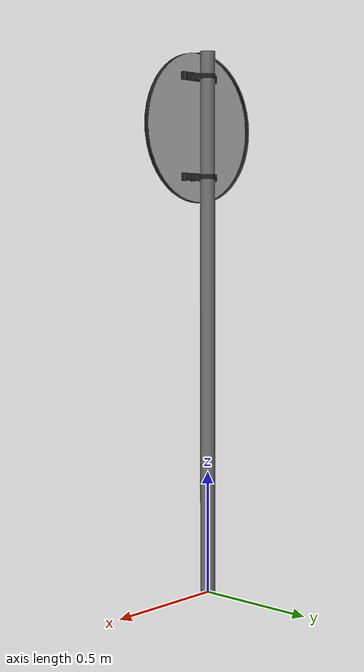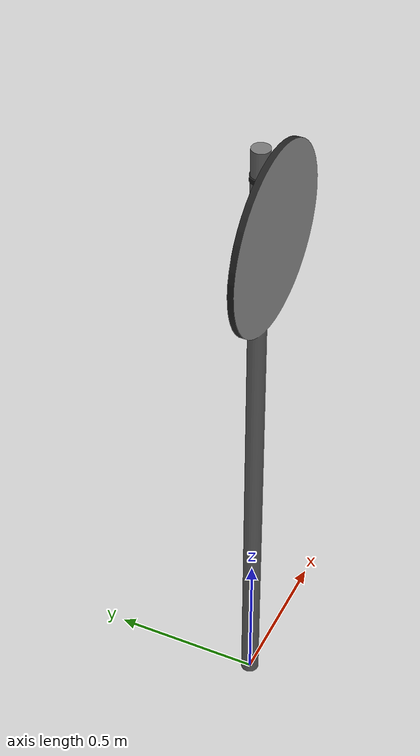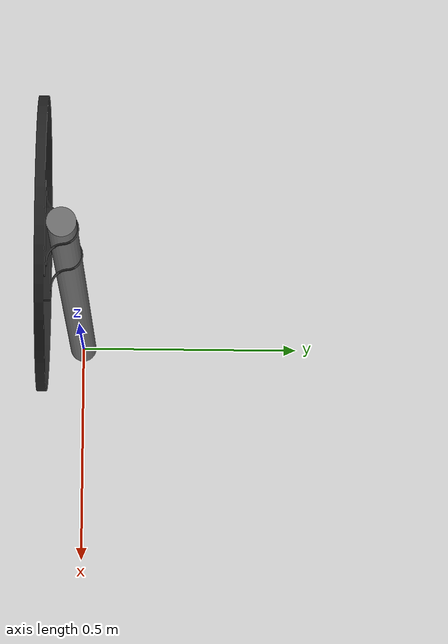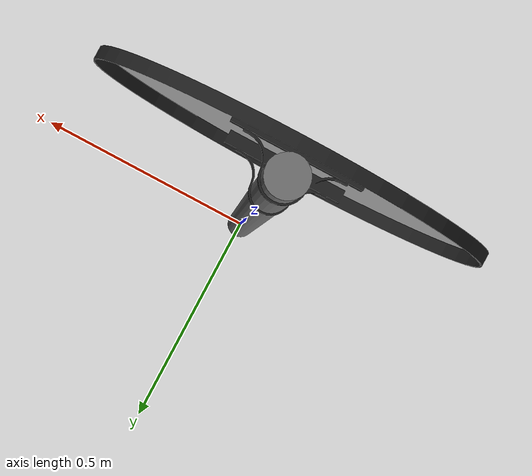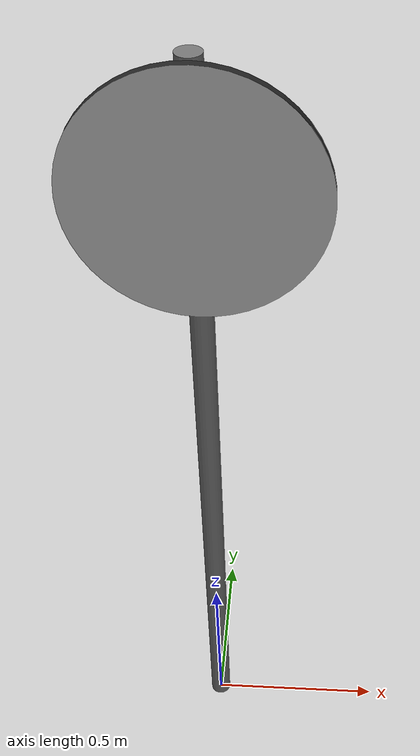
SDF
<?xml version="1.0" ?>
<sdf version="1.6">
  <model name="T_forward">
    <static>true</static>
    <link name="link">
      <visual name="visual">
        <geometry>
          <mesh>
            <scale>1 1 1</scale>
            <uri>model://T_forward/meshes/T_forward.dae</uri>
          </mesh>
        </geometry>
      </visual>
    </link>
  </model>
</sdf>
